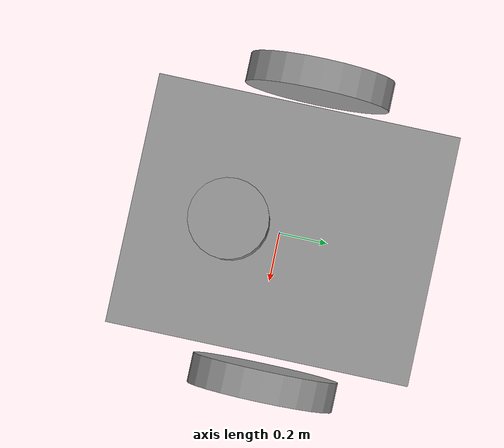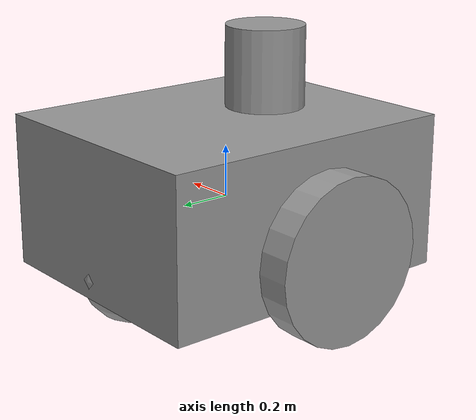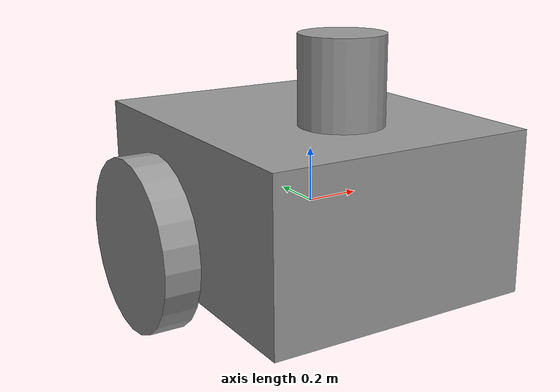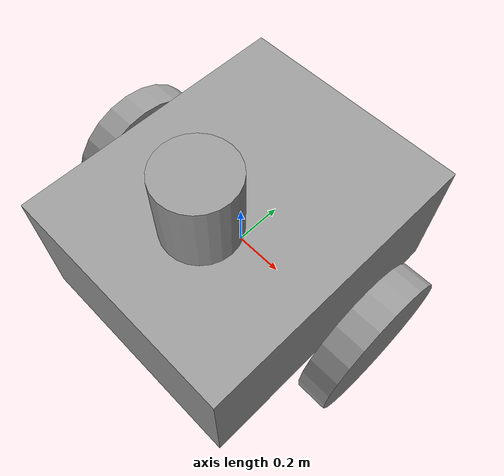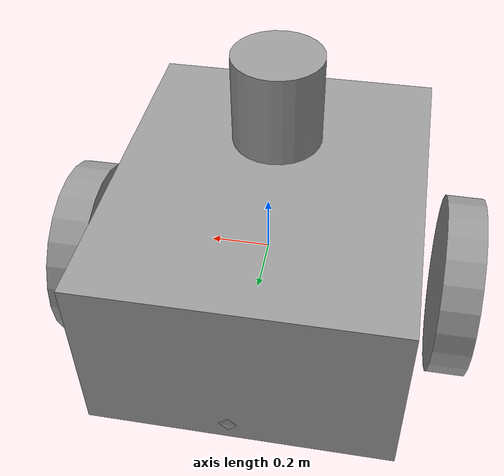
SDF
<?xml version='1.0'?>
<sdf version='1.7'>
  <model name='scanbot'>

    <static>true</static>

    <link name='chassis'>
      <pose>0 0 .1 0 0 0</pose>
      <collision name='collision'>
        <pose>0 0 0 0 0 0</pose>
        <geometry>
          <box>
            <size> 0.158 0.141 0.085</size>
          </box>
        </geometry>
      </collision>
      <visual name='visual'>
        <pose>0 0 0 0 0 0</pose>
        <geometry>
          <box>
            <size> 0.158 0.141 0.085</size>
          </box>
        </geometry>
      </visual>
    </link>

    <link name='link_0'>
      <inertial>
        <mass>0.721734</mass>
        <inertia>
          <ixx>0.109827</ixx>
          <ixy>0</ixy>
          <ixz>0</ixz>
          <iyy>0.0814239</iyy>
          <iyz>0</iyz>
          <izz>0.148692</izz>
        </inertia>
        <pose>0 0 0 0 -0 0</pose>
      </inertial>
      <pose>-0.009586 0.013226 0.029635 0 -0 0</pose>
      <visual name='visual'>
        <pose>0 0 0 0 -0 0</pose>
        <geometry>
          <box>
            <size>1 1.21337 0.594815</size>
          </box>
        </geometry>
        <material>
          <lighting>1</lighting>
          <script>
            <uri>file://media/materials/scripts/gazebo.material</uri>
            <name>Gazebo/Grey</name>
          </script>
          <shader type='pixel'/>
        </material>
        <transparency>0</transparency>
        <cast_shadows>1</cast_shadows>
      </visual>
      <collision name='collision'>
        <laser_retro>0</laser_retro>
        <max_contacts>10</max_contacts>
        <pose>0 0 0 0 -0 0</pose>
        <geometry>
          <box>
            <size>1 1.21337 0.594815</size>
          </box>
        </geometry>
        <surface>
          <friction>
            <ode>
              <mu>1</mu>
              <mu2>1</mu2>
              <fdir1>0 0 0</fdir1>
              <slip1>0</slip1>
              <slip2>0</slip2>
            </ode>
            <torsional>
              <coefficient>1</coefficient>
              <patch_radius>0</patch_radius>
              <surface_radius>0</surface_radius>
              <use_patch_radius>1</use_patch_radius>
              <ode>
                <slip>0</slip>
              </ode>
            </torsional>
          </friction>
          <bounce>
            <restitution_coefficient>0</restitution_coefficient>
            <threshold>1e+06</threshold>
          </bounce>
          <contact>
            <collide_without_contact>0</collide_without_contact>
            <collide_without_contact_bitmask>1</collide_without_contact_bitmask>
            <collide_bitmask>1</collide_bitmask>
            <ode>
              <soft_cfm>0</soft_cfm>
              <soft_erp>0.2</soft_erp>
              <kp>1e+13</kp>
              <kd>1</kd>
              <max_vel>0.01</max_vel>
              <min_depth>0</min_depth>
            </ode>
            <bullet>
              <split_impulse>1</split_impulse>
              <split_impulse_penetration_threshold>-0.01</split_impulse_penetration_threshold>
              <soft_cfm>0</soft_cfm>
              <soft_erp>0.2</soft_erp>
              <kp>1e+13</kp>
              <kd>1</kd>
            </bullet>
          </contact>
        </surface>
      </collision>
    </link>
    <link name='link_1'>
      <inertial>
        <mass>0.0468721</mass>
        <inertia>
          <ixx>0.00116204</ixx>
          <ixy>0</ixy>
          <ixz>0</ixz>
          <iyy>0.00116204</iyy>
          <iyz>0</iyz>
          <izz>0.00220276</izz>
        </inertia>
        <pose>0 0 0 0 -0 0</pose>
      </inertial>
      <pose>0.615284 0.059488 -0.053489 3.14159 1.57079 3.14159</pose>
      <visual name='visual'>
        <pose>0 0 0 0 -0 0</pose>
        <geometry>
          <cylinder>
            <radius>0.306578</radius>
            <length>0.12462</length>
          </cylinder>
        </geometry>
        <material>
          <lighting>1</lighting>
          <script>
            <uri>file://media/materials/scripts/gazebo.material</uri>
            <name>Gazebo/Grey</name>
          </script>
          <shader type='pixel'/>
        </material>
        <transparency>0</transparency>
        <cast_shadows>1</cast_shadows>
      </visual>
      <collision name='collision'>
        <laser_retro>0</laser_retro>
        <max_contacts>10</max_contacts>
        <pose>0 0 0 0 -0 0</pose>
        <geometry>
          <cylinder>
            <radius>0.306578</radius>
            <length>0.12462</length>
          </cylinder>
        </geometry>
        <surface>
          <friction>
            <ode>
              <mu>1</mu>
              <mu2>1</mu2>
              <fdir1>0 0 0</fdir1>
              <slip1>0</slip1>
              <slip2>0</slip2>
            </ode>
            <torsional>
              <coefficient>1</coefficient>
              <patch_radius>0</patch_radius>
              <surface_radius>0</surface_radius>
              <use_patch_radius>1</use_patch_radius>
              <ode>
                <slip>0</slip>
              </ode>
            </torsional>
          </friction>
          <bounce>
            <restitution_coefficient>0</restitution_coefficient>
            <threshold>1e+06</threshold>
          </bounce>
          <contact>
            <collide_without_contact>0</collide_without_contact>
            <collide_without_contact_bitmask>1</collide_without_contact_bitmask>
            <collide_bitmask>1</collide_bitmask>
            <ode>
              <soft_cfm>0</soft_cfm>
              <soft_erp>0.2</soft_erp>
              <kp>1e+13</kp>
              <kd>1</kd>
              <max_vel>0.01</max_vel>
              <min_depth>0</min_depth>
            </ode>
            <bullet>
              <split_impulse>1</split_impulse>
              <split_impulse_penetration_threshold>-0.01</split_impulse_penetration_threshold>
              <soft_cfm>0</soft_cfm>
              <soft_erp>0.2</soft_erp>
              <kp>1e+13</kp>
              <kd>1</kd>
            </bullet>
          </contact>
        </surface>
      </collision>
    </link>
    <link name='link_1_clone'>
      <inertial>
        <mass>0.0468721</mass>
        <inertia>
          <ixx>0.00116204</ixx>
          <ixy>0</ixy>
          <ixz>0</ixz>
          <iyy>0.00116204</iyy>
          <iyz>0</iyz>
          <izz>0.00220276</izz>
        </inertia>
        <pose>0 0 0 0 -0 0</pose>
      </inertial>
      <pose>-0.651661 0.032118 -0.053489 3.14159 1.57079 3.14159</pose>
      <visual name='visual'>
        <pose>0 0 0 0 -0 0</pose>
        <geometry>
          <cylinder>
            <radius>0.306578</radius>
            <length>0.12462</length>
          </cylinder>
        </geometry>
        <material>
          <lighting>1</lighting>
          <script>
            <uri>file://media/materials/scripts/gazebo.material</uri>
            <name>Gazebo/Grey</name>
          </script>
          <shader type='pixel'/>
        </material>
        <transparency>0</transparency>
        <cast_shadows>1</cast_shadows>
      </visual>
      <collision name='collision'>
        <laser_retro>0</laser_retro>
        <max_contacts>10</max_contacts>
        <pose>0 0 0 0 -0 0</pose>
        <geometry>
          <cylinder>
            <radius>0.306578</radius>
            <length>0.12462</length>
          </cylinder>
        </geometry>
        <surface>
          <friction>
            <ode>
              <mu>1</mu>
              <mu2>1</mu2>
              <fdir1>0 0 0</fdir1>
              <slip1>0</slip1>
              <slip2>0</slip2>
            </ode>
            <torsional>
              <coefficient>1</coefficient>
              <patch_radius>0</patch_radius>
              <surface_radius>0</surface_radius>
              <use_patch_radius>1</use_patch_radius>
              <ode>
                <slip>0</slip>
              </ode>
            </torsional>
          </friction>
          <bounce>
            <restitution_coefficient>0</restitution_coefficient>
            <threshold>1e+06</threshold>
          </bounce>
          <contact>
            <collide_without_contact>0</collide_without_contact>
            <collide_without_contact_bitmask>1</collide_without_contact_bitmask>
            <collide_bitmask>1</collide_bitmask>
            <ode>
              <soft_cfm>0</soft_cfm>
              <soft_erp>0.2</soft_erp>
              <kp>1e+13</kp>
              <kd>1</kd>
              <max_vel>0.01</max_vel>
              <min_depth>0</min_depth>
            </ode>
            <bullet>
              <split_impulse>1</split_impulse>
              <split_impulse_penetration_threshold>-0.01</split_impulse_penetration_threshold>
              <soft_cfm>0</soft_cfm>
              <soft_erp>0.2</soft_erp>
              <kp>1e+13</kp>
              <kd>1</kd>
            </bullet>
          </contact>
        </surface>
      </collision>
    </link>
    <link name='link_3'>
      <inertial>
        <mass>0.0626542</mass>
        <inertia>
          <ixx>0.00098836</ixx>
          <ixy>0</ixy>
          <ixz>0</ixz>
          <iyy>0.00098836</iyy>
          <iyz>0</iyz>
          <izz>0.00098836</izz>
        </inertia>
        <pose>0 0 0 0 -0 0</pose>
      </inertial>
      <pose>0.02152 0.426057 -0.201846 0 -0 0</pose>
      <visual name='visual'>
        <pose>0 0 0 0 -0 0</pose>
        <geometry>
          <sphere>
            <radius>0.198588</radius>
          </sphere>
        </geometry>
        <material>
          <lighting>1</lighting>
          <script>
            <uri>file://media/materials/scripts/gazebo.material</uri>
            <name>Gazebo/Grey</name>
          </script>
          <shader type='pixel'/>
        </material>
        <transparency>0</transparency>
        <cast_shadows>1</cast_shadows>
      </visual>
      <collision name='collision'>
        <laser_retro>0</laser_retro>
        <max_contacts>10</max_contacts>
        <pose>0 0 0 0 -0 0</pose>
        <geometry>
          <sphere>
            <radius>0.198588</radius>
          </sphere>
        </geometry>
        <surface>
          <friction>
            <ode>
              <mu>1</mu>
              <mu2>1</mu2>
              <fdir1>0 0 0</fdir1>
              <slip1>0</slip1>
              <slip2>0</slip2>
            </ode>
            <torsional>
              <coefficient>1</coefficient>
              <patch_radius>0</patch_radius>
              <surface_radius>0</surface_radius>
              <use_patch_radius>1</use_patch_radius>
              <ode>
                <slip>0</slip>
              </ode>
            </torsional>
          </friction>
          <bounce>
            <restitution_coefficient>0</restitution_coefficient>
            <threshold>1e+06</threshold>
          </bounce>
          <contact>
            <collide_without_contact>0</collide_without_contact>
            <collide_without_contact_bitmask>1</collide_without_contact_bitmask>
            <collide_bitmask>1</collide_bitmask>
            <ode>
              <soft_cfm>0</soft_cfm>
              <soft_erp>0.2</soft_erp>
              <kp>1e+13</kp>
              <kd>1</kd>
              <max_vel>0.01</max_vel>
              <min_depth>0</min_depth>
            </ode>
            <bullet>
              <split_impulse>1</split_impulse>
              <split_impulse_penetration_threshold>-0.01</split_impulse_penetration_threshold>
              <soft_cfm>0</soft_cfm>
              <soft_erp>0.2</soft_erp>
              <kp>1e+13</kp>
              <kd>1</kd>
            </bullet>
          </contact>
        </surface>
      </collision>
    </link>
    <link name='link_3_clone'>
      <inertial>
        <mass>0.0626542</mass>
        <inertia>
          <ixx>0.00098836</ixx>
          <ixy>0</ixy>
          <ixz>0</ixz>
          <iyy>0.00098836</iyy>
          <iyz>0</iyz>
          <izz>0.00098836</izz>
        </inertia>
        <pose>0 0 0 0 -0 0</pose>
      </inertial>
      <pose>0.022161 -0.335988 -0.194462 0 -0 0</pose>
      <visual name='visual'>
        <pose>0 0 0 0 -0 0</pose>
        <geometry>
          <sphere>
            <radius>0.198588</radius>
          </sphere>
        </geometry>
        <material>
          <lighting>1</lighting>
          <script>
            <uri>file://media/materials/scripts/gazebo.material</uri>
            <name>Gazebo/Grey</name>
          </script>
          <shader type='pixel'/>
        </material>
        <transparency>0</transparency>
        <cast_shadows>1</cast_shadows>
      </visual>
      <collision name='collision'>
        <laser_retro>0</laser_retro>
        <max_contacts>10</max_contacts>
        <pose>0 0 0 0 -0 0</pose>
        <geometry>
          <sphere>
            <radius>0.198588</radius>
          </sphere>
        </geometry>
        <surface>
          <friction>
            <ode>
              <mu>1</mu>
              <mu2>1</mu2>
              <fdir1>0 0 0</fdir1>
              <slip1>0</slip1>
              <slip2>0</slip2>
            </ode>
            <torsional>
              <coefficient>1</coefficient>
              <patch_radius>0</patch_radius>
              <surface_radius>0</surface_radius>
              <use_patch_radius>1</use_patch_radius>
              <ode>
                <slip>0</slip>
              </ode>
            </torsional>
          </friction>
          <bounce>
            <restitution_coefficient>0</restitution_coefficient>
            <threshold>1e+06</threshold>
          </bounce>
          <contact>
            <collide_without_contact>0</collide_without_contact>
            <collide_without_contact_bitmask>1</collide_without_contact_bitmask>
            <collide_bitmask>1</collide_bitmask>
            <ode>
              <soft_cfm>0</soft_cfm>
              <soft_erp>0.2</soft_erp>
              <kp>1e+13</kp>
              <kd>1</kd>
              <max_vel>0.01</max_vel>
              <min_depth>0</min_depth>
            </ode>
            <bullet>
              <split_impulse>1</split_impulse>
              <split_impulse_penetration_threshold>-0.01</split_impulse_penetration_threshold>
              <soft_cfm>0</soft_cfm>
              <soft_erp>0.2</soft_erp>
              <kp>1e+13</kp>
              <kd>1</kd>
            </bullet>
          </contact>
        </surface>
      </collision>
    </link>
    <link name='link_4'>
      <inertial>
        <mass>0.0323791</mass>
        <inertia>
          <ixx>0.000505313</ixx>
          <ixy>0</ixy>
          <ixz>0</ixz>
          <iyy>0.000505313</iyy>
          <iyz>0</iyz>
          <izz>0.000384731</izz>
        </inertia>
        <pose>0 0 0 0 -0 0</pose>
      </inertial>
      <pose>0.002282 -0.194901 0.473656 0 -0 0</pose>
      <visual name='visual'>
        <pose>0 0 0 0 -0 0</pose>
        <geometry>
          <cylinder>
            <radius>0.154156</radius>
            <length>0.34056</length>
          </cylinder>
        </geometry>
        <material>
          <lighting>1</lighting>
          <script>
            <uri>file://media/materials/scripts/gazebo.material</uri>
            <name>Gazebo/Grey</name>
          </script>
          <shader type='pixel'/>
        </material>
        <transparency>0</transparency>
        <cast_shadows>1</cast_shadows>
      </visual>
      <collision name='collision'>
        <laser_retro>0</laser_retro>
        <max_contacts>10</max_contacts>
        <pose>0 0 0 0 -0 0</pose>
        <geometry>
          <cylinder>
            <radius>0.154156</radius>
            <length>0.34056</length>
          </cylinder>
        </geometry>
        <surface>
          <friction>
            <ode>
              <mu>1</mu>
              <mu2>1</mu2>
              <fdir1>0 0 0</fdir1>
              <slip1>0</slip1>
              <slip2>0</slip2>
            </ode>
            <torsional>
              <coefficient>1</coefficient>
              <patch_radius>0</patch_radius>
              <surface_radius>0</surface_radius>
              <use_patch_radius>1</use_patch_radius>
              <ode>
                <slip>0</slip>
              </ode>
            </torsional>
          </friction>
          <bounce>
            <restitution_coefficient>0</restitution_coefficient>
            <threshold>1e+06</threshold>
          </bounce>
          <contact>
            <collide_without_contact>0</collide_without_contact>
            <collide_without_contact_bitmask>1</collide_without_contact_bitmask>
            <collide_bitmask>1</collide_bitmask>
            <ode>
              <soft_cfm>0</soft_cfm>
              <soft_erp>0.2</soft_erp>
              <kp>1e+13</kp>
              <kd>1</kd>
              <max_vel>0.01</max_vel>
              <min_depth>0</min_depth>
            </ode>
            <bullet>
              <split_impulse>1</split_impulse>
              <split_impulse_penetration_threshold>-0.01</split_impulse_penetration_threshold>
              <soft_cfm>0</soft_cfm>
              <soft_erp>0.2</soft_erp>
              <kp>1e+13</kp>
              <kd>1</kd>
            </bullet>
          </contact>
        </surface>
      </collision>
    </link>
    <static>0</static>
    <allow_auto_disable>1</allow_auto_disable>
  </model>
</sdf>
